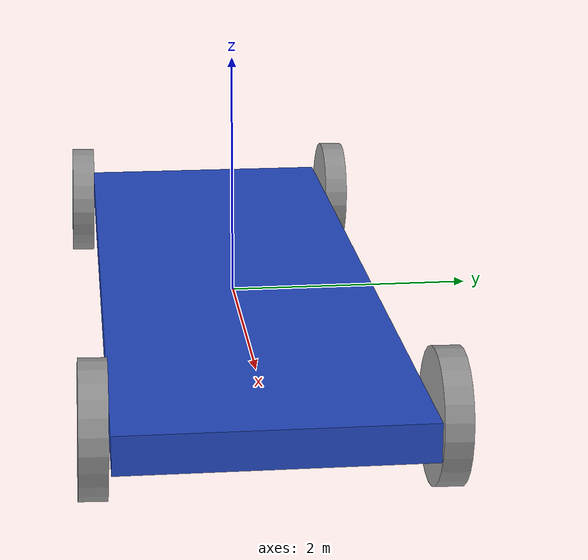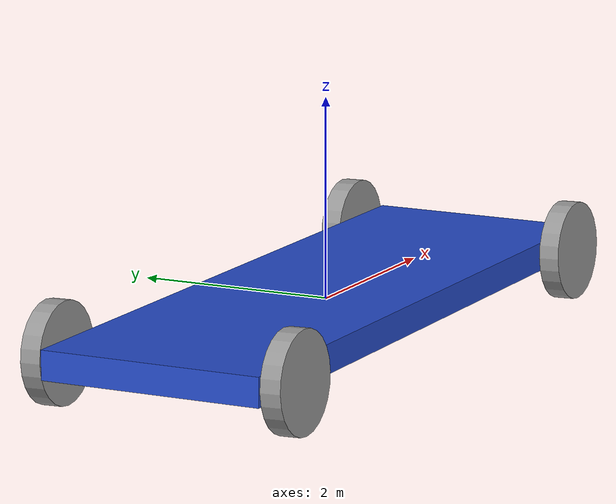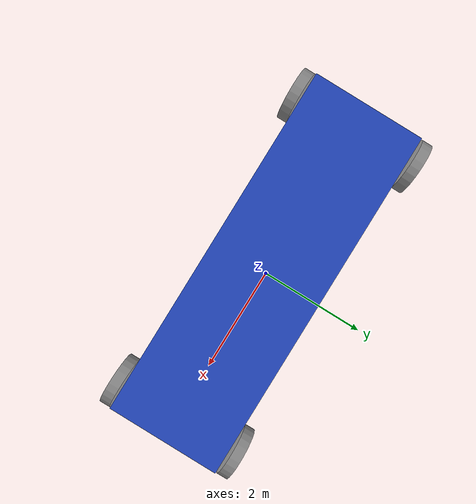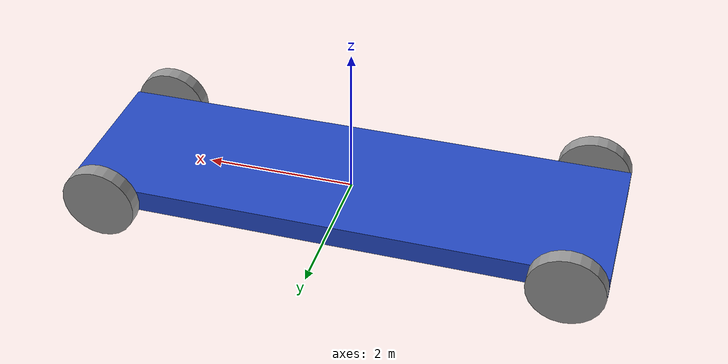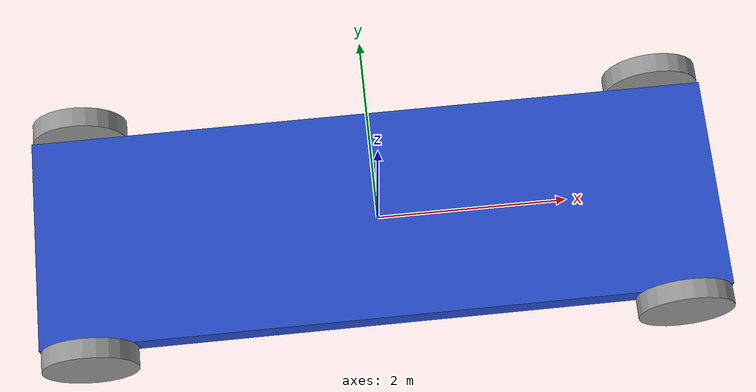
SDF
<?xml version='1.0'?>
<sdf version='1.6'>
  <model name='big_cart'>
    <link name='link_0'>
      <pose frame=''>0 0 0 0 -0 0</pose>
      <inertial>
        <mass>4.6866</mass>
        <inertia>
          <ixx>2.0216</ixx>
          <ixy>0</ixy>
          <ixz>0</ixz>
          <iyy>20.0752</iyy>
          <iyz>0</iyz>
          <izz>22.0311</izz>
        </inertia>
        <pose frame=''>0 0 0 0 -0 0</pose>
      </inertial>
      <gravity>1</gravity>
      <self_collide>0</self_collide>
      <kinematic>0</kinematic>
      <visual name='visual'>
        <pose frame=''>0 0 0 0 -0 0</pose>
        <geometry>
          <box>
            <size>7.16364 2.25661 0.28988</size>
          </box>
        </geometry>
        <material>
          <lighting>1</lighting>
          <script>
            <uri>file://media/materials/scripts/gazebo.material</uri>
            <name>Gazebo/Blue</name>
          </script>
          <ambient>0.9 0.002 0 1</ambient>
          <diffuse>0.9 0.002 0.01 0.9</diffuse>
          <specular>0.01 0.01 0.01 1</specular>
          <emissive>0 0 0 1</emissive>
          <shader type='vertex'>
            <normal_map>__default__</normal_map>
          </shader>
        </material>
        <cast_shadows>1</cast_shadows>
        <transparency>0</transparency>
      </visual>
      <visual name='ModelPreview_0::link_0::visual_1'>
        <pose frame=''>0 0 0 0 -0 0</pose>
        <geometry>
          <box>
            <size>7.16364 2.25661 0.28988</size>
          </box>
        </geometry>
        <material>
          <lighting>1</lighting>
          <script>
            <uri>file://media/materials/scripts/gazebo.material</uri>
            <name>Gazebo/Blue</name>
          </script>
          <ambient>0.09 0.09 0.6 0.7</ambient>
          <diffuse>0.9 0.9 0.9 0.9</diffuse>
          <specular>0.01 0.01 0.01 1</specular>
          <emissive>0 0 0 1</emissive>
          <shader type='vertex'>
            <normal_map>__default__</normal_map>
          </shader>
        </material>
        <cast_shadows>1</cast_shadows>
        <transparency>0</transparency>
      </visual>
      <collision name='collision'>
        <laser_retro>0</laser_retro>
        <max_contacts>10</max_contacts>
        <pose frame=''>0 0 0 0 -0 0</pose>
        <geometry>
          <box>
            <size>7.16364 2.25661 0.28988</size>
          </box>
        </geometry>
        <surface>
          <friction>
            <ode>
              <mu>1</mu>
              <mu2>1</mu2>
              <fdir1>0 0 0</fdir1>
              <slip1>0</slip1>
              <slip2>0</slip2>
            </ode>
            <torsional>
              <coefficient>1</coefficient>
              <patch_radius>0</patch_radius>
              <surface_radius>0</surface_radius>
              <use_patch_radius>1</use_patch_radius>
              <ode>
                <slip>0</slip>
              </ode>
            </torsional>
          </friction>
          <bounce>
            <restitution_coefficient>0</restitution_coefficient>
            <threshold>1e+06</threshold>
          </bounce>
          <contact>
            <collide_without_contact>0</collide_without_contact>
            <collide_without_contact_bitmask>1</collide_without_contact_bitmask>
            <collide_bitmask>1</collide_bitmask>
            <ode>
              <soft_cfm>0</soft_cfm>
              <soft_erp>0.2</soft_erp>
              <kp>1e+13</kp>
              <kd>1</kd>
              <max_vel>0.01</max_vel>
              <min_depth>0</min_depth>
            </ode>
            <bullet>
              <split_impulse>1</split_impulse>
              <split_impulse_penetration_threshold>-0.01</split_impulse_penetration_threshold>
              <soft_cfm>0</soft_cfm>
              <soft_erp>0.2</soft_erp>
              <kp>1e+13</kp>
              <kd>1</kd>
            </bullet>
          </contact>
        </surface>
      </collision>
    </link>
    <link name='link_1_clone_clone_clone'>
      <pose frame=''>-3.08182 1.24423 0 -1.59621 0 0</pose>
      <inertial>
        <mass>0.206504</mass>
        <inertia>
          <ixx>0.0136404</ixx>
          <ixy>0</ixy>
          <ixz>0</ixz>
          <iyy>0.0136404</iyy>
          <iyz>0</iyz>
          <izz>0.0258131</izz>
        </inertia>
        <pose frame=''>0 0 0 0 -0 0</pose>
      </inertial>
      <self_collide>0</self_collide>
      <kinematic>0</kinematic>
      <visual name='visual'>
        <pose frame=''>0 0 0 0 -0 0</pose>
        <geometry>
          <cylinder>
            <radius>0.5</radius>
            <length>0.206502</length>
          </cylinder>
        </geometry>
        <material>
          <lighting>1</lighting>
          <script>
            <uri>file://media/materials/scripts/gazebo.material</uri>
            <name>Gazebo/Grey</name>
          </script>
          <ambient>0.5 0.5 0.5 1</ambient>
          <diffuse>0.9 0.9 0.9 1</diffuse>
          <specular>0.01 0.01 0.01 1</specular>
          <emissive>0 0 0 1</emissive>
          <shader type='vertex'>
            <normal_map>__default__</normal_map>
          </shader>
        </material>
        <cast_shadows>1</cast_shadows>
        <transparency>0</transparency>
      </visual>
      <collision name='collision'>
        <laser_retro>0</laser_retro>
        <max_contacts>10</max_contacts>
        <pose frame=''>0 0 0 0 -0 0</pose>
        <geometry>
          <cylinder>
            <radius>0.5</radius>
            <length>0.206502</length>
          </cylinder>
        </geometry>
        <surface>
          <friction>
            <ode>
              <mu>1</mu>
              <mu2>1</mu2>
              <fdir1>0 0 0</fdir1>
              <slip1>0</slip1>
              <slip2>0</slip2>
            </ode>
            <torsional>
              <coefficient>1</coefficient>
              <patch_radius>0</patch_radius>
              <surface_radius>0</surface_radius>
              <use_patch_radius>1</use_patch_radius>
              <ode>
                <slip>0</slip>
              </ode>
            </torsional>
          </friction>
          <bounce>
            <restitution_coefficient>0</restitution_coefficient>
            <threshold>1e+06</threshold>
          </bounce>
          <contact>
            <collide_without_contact>0</collide_without_contact>
            <collide_without_contact_bitmask>1</collide_without_contact_bitmask>
            <collide_bitmask>1</collide_bitmask>
            <ode>
              <soft_cfm>0</soft_cfm>
              <soft_erp>0.2</soft_erp>
              <kp>1e+13</kp>
              <kd>1</kd>
              <max_vel>0.01</max_vel>
              <min_depth>0</min_depth>
            </ode>
            <bullet>
              <split_impulse>1</split_impulse>
              <split_impulse_penetration_threshold>-0.01</split_impulse_penetration_threshold>
              <soft_cfm>0</soft_cfm>
              <soft_erp>0.2</soft_erp>
              <kp>1e+13</kp>
              <kd>1</kd>
            </bullet>
          </contact>
        </surface>
      </collision>
    </link>
    <link name='link_1_clone_clone_clone_1'>
      <pose frame=''>3.08182 -1.24423 0 -1.59621 0 0</pose>
      <inertial>
        <mass>0.206504</mass>
        <inertia>
          <ixx>0.0136404</ixx>
          <ixy>0</ixy>
          <ixz>0</ixz>
          <iyy>0.0136404</iyy>
          <iyz>0</iyz>
          <izz>0.0258131</izz>
        </inertia>
        <pose frame=''>0 0 0 0 -0 0</pose>
      </inertial>
      <self_collide>0</self_collide>
      <kinematic>0</kinematic>
      <visual name='visual'>
        <pose frame=''>0 0 0 0 -0 0</pose>
        <geometry>
          <cylinder>
            <radius>0.5</radius>
            <length>0.206502</length>
          </cylinder>
        </geometry>
        <material>
          <lighting>1</lighting>
          <script>
            <uri>file://media/materials/scripts/gazebo.material</uri>
            <name>Gazebo/Grey</name>
          </script>
          <ambient>0.5 0.5 0.5 1</ambient>
          <diffuse>0.9 0.9 0.9 1</diffuse>
          <specular>0.01 0.01 0.01 1</specular>
          <emissive>0 0 0 1</emissive>
          <shader type='vertex'>
            <normal_map>__default__</normal_map>
          </shader>
        </material>
        <cast_shadows>1</cast_shadows>
        <transparency>0</transparency>
      </visual>
      <collision name='collision'>
        <laser_retro>0</laser_retro>
        <max_contacts>10</max_contacts>
        <pose frame=''>0 0 0 0 -0 0</pose>
        <geometry>
          <cylinder>
            <radius>0.5</radius>
            <length>0.206502</length>
          </cylinder>
        </geometry>
        <surface>
          <friction>
            <ode>
              <mu>1</mu>
              <mu2>1</mu2>
              <fdir1>0 0 0</fdir1>
              <slip1>0</slip1>
              <slip2>0</slip2>
            </ode>
            <torsional>
              <coefficient>1</coefficient>
              <patch_radius>0</patch_radius>
              <surface_radius>0</surface_radius>
              <use_patch_radius>1</use_patch_radius>
              <ode>
                <slip>0</slip>
              </ode>
            </torsional>
          </friction>
          <bounce>
            <restitution_coefficient>0</restitution_coefficient>
            <threshold>1e+06</threshold>
          </bounce>
          <contact>
            <collide_without_contact>0</collide_without_contact>
            <collide_without_contact_bitmask>1</collide_without_contact_bitmask>
            <collide_bitmask>1</collide_bitmask>
            <ode>
              <soft_cfm>0</soft_cfm>
              <soft_erp>0.2</soft_erp>
              <kp>1e+13</kp>
              <kd>1</kd>
              <max_vel>0.01</max_vel>
              <min_depth>0</min_depth>
            </ode>
            <bullet>
              <split_impulse>1</split_impulse>
              <split_impulse_penetration_threshold>-0.01</split_impulse_penetration_threshold>
              <soft_cfm>0</soft_cfm>
              <soft_erp>0.2</soft_erp>
              <kp>1e+13</kp>
              <kd>1</kd>
            </bullet>
          </contact>
        </surface>
      </collision>
    </link>
    <link name='link_1_clone_clone_clone_1_clone'>
      <pose frame=''>3.08182 1.24423 0 -1.59621 0 0</pose>
      <inertial>
        <mass>0.206504</mass>
        <inertia>
          <ixx>0.0136404</ixx>
          <ixy>0</ixy>
          <ixz>0</ixz>
          <iyy>0.0136404</iyy>
          <iyz>0</iyz>
          <izz>0.0258131</izz>
        </inertia>
        <pose frame=''>0 0 0 0 -0 0</pose>
      </inertial>
      <self_collide>0</self_collide>
      <kinematic>0</kinematic>
      <visual name='visual'>
        <pose frame=''>0 0 0 0 -0 0</pose>
        <geometry>
          <cylinder>
            <radius>0.5</radius>
            <length>0.206502</length>
          </cylinder>
        </geometry>
        <material>
          <lighting>1</lighting>
          <script>
            <uri>file://media/materials/scripts/gazebo.material</uri>
            <name>Gazebo/Grey</name>
          </script>
          <ambient>0.5 0.5 0.5 1</ambient>
          <diffuse>0.9 0.9 0.9 1</diffuse>
          <specular>0.01 0.01 0.01 1</specular>
          <emissive>0 0 0 1</emissive>
          <shader type='vertex'>
            <normal_map>__default__</normal_map>
          </shader>
        </material>
        <cast_shadows>1</cast_shadows>
        <transparency>0</transparency>
      </visual>
      <collision name='collision'>
        <laser_retro>0</laser_retro>
        <max_contacts>10</max_contacts>
        <pose frame=''>0 0 0 0 -0 0</pose>
        <geometry>
          <cylinder>
            <radius>0.5</radius>
            <length>0.206502</length>
          </cylinder>
        </geometry>
        <surface>
          <friction>
            <ode>
              <mu>1</mu>
              <mu2>1</mu2>
              <fdir1>0 0 0</fdir1>
              <slip1>0</slip1>
              <slip2>0</slip2>
            </ode>
            <torsional>
              <coefficient>1</coefficient>
              <patch_radius>0</patch_radius>
              <surface_radius>0</surface_radius>
              <use_patch_radius>1</use_patch_radius>
              <ode>
                <slip>0</slip>
              </ode>
            </torsional>
          </friction>
          <bounce>
            <restitution_coefficient>0</restitution_coefficient>
            <threshold>1e+06</threshold>
          </bounce>
          <contact>
            <collide_without_contact>0</collide_without_contact>
            <collide_without_contact_bitmask>1</collide_without_contact_bitmask>
            <collide_bitmask>1</collide_bitmask>
            <ode>
              <soft_cfm>0</soft_cfm>
              <soft_erp>0.2</soft_erp>
              <kp>1e+13</kp>
              <kd>1</kd>
              <max_vel>0.01</max_vel>
              <min_depth>0</min_depth>
            </ode>
            <bullet>
              <split_impulse>1</split_impulse>
              <split_impulse_penetration_threshold>-0.01</split_impulse_penetration_threshold>
              <soft_cfm>0</soft_cfm>
              <soft_erp>0.2</soft_erp>
              <kp>1e+13</kp>
              <kd>1</kd>
            </bullet>
          </contact>
        </surface>
      </collision>
    </link>
    <link name='link_1_clone_clone_clone_clone'>
      <pose frame=''>-3.08182 -1.24423 0 -1.59621 0 0</pose>
      <inertial>
        <mass>0.206504</mass>
        <inertia>
          <ixx>0.0136404</ixx>
          <ixy>0</ixy>
          <ixz>0</ixz>
          <iyy>0.0136404</iyy>
          <iyz>0</iyz>
          <izz>0.0258131</izz>
        </inertia>
        <pose frame=''>0 0 0 0 -0 0</pose>
      </inertial>
      <self_collide>0</self_collide>
      <kinematic>0</kinematic>
      <visual name='visual'>
        <pose frame=''>0 0 0 0 -0 0</pose>
        <geometry>
          <cylinder>
            <radius>0.5</radius>
            <length>0.206502</length>
          </cylinder>
        </geometry>
        <material>
          <lighting>1</lighting>
          <script>
            <uri>file://media/materials/scripts/gazebo.material</uri>
            <name>Gazebo/Grey</name>
          </script>
          <ambient>0.5 0.5 0.5 1</ambient>
          <diffuse>0.9 0.9 0.9 1</diffuse>
          <specular>0.01 0.01 0.01 1</specular>
          <emissive>0 0 0 1</emissive>
          <shader type='vertex'>
            <normal_map>__default__</normal_map>
          </shader>
        </material>
        <cast_shadows>1</cast_shadows>
        <transparency>0</transparency>
      </visual>
      <collision name='collision'>
        <laser_retro>0</laser_retro>
        <max_contacts>10</max_contacts>
        <pose frame=''>0 0 0 0 -0 0</pose>
        <geometry>
          <cylinder>
            <radius>0.5</radius>
            <length>0.206502</length>
          </cylinder>
        </geometry>
        <surface>
          <friction>
            <ode>
              <mu>1</mu>
              <mu2>1</mu2>
              <fdir1>0 0 0</fdir1>
              <slip1>0</slip1>
              <slip2>0</slip2>
            </ode>
            <torsional>
              <coefficient>1</coefficient>
              <patch_radius>0</patch_radius>
              <surface_radius>0</surface_radius>
              <use_patch_radius>1</use_patch_radius>
              <ode>
                <slip>0</slip>
              </ode>
            </torsional>
          </friction>
          <bounce>
            <restitution_coefficient>0</restitution_coefficient>
            <threshold>1e+06</threshold>
          </bounce>
          <contact>
            <collide_without_contact>0</collide_without_contact>
            <collide_without_contact_bitmask>1</collide_without_contact_bitmask>
            <collide_bitmask>1</collide_bitmask>
            <ode>
              <soft_cfm>0</soft_cfm>
              <soft_erp>0.2</soft_erp>
              <kp>1e+13</kp>
              <kd>1</kd>
              <max_vel>0.01</max_vel>
              <min_depth>0</min_depth>
            </ode>
            <bullet>
              <split_impulse>1</split_impulse>
              <split_impulse_penetration_threshold>-0.01</split_impulse_penetration_threshold>
              <soft_cfm>0</soft_cfm>
              <soft_erp>0.2</soft_erp>
              <kp>1e+13</kp>
              <kd>1</kd>
            </bullet>
          </contact>
        </surface>
      </collision>
    </link>
    <joint name='link_0_JOINT_4' type='revolute'>
      <parent>link_0</parent>
      <child>link_1_clone_clone_clone</child>
      <pose frame=''>0 0 0 0 -0 0</pose>
      <axis>
        <xyz>0 0 1</xyz>
        <use_parent_model_frame>0</use_parent_model_frame>
        <limit>
          <lower>-1.79769e+308</lower>
          <upper>1.79769e+308</upper>
          <effort>-1</effort>
          <velocity>-1</velocity>
        </limit>
        <dynamics>
          <spring_reference>0</spring_reference>
          <spring_stiffness>0</spring_stiffness>
          <damping>0</damping>
        </dynamics>
      </axis>
      <physics>
        <ode>
          <limit>
            <cfm>0</cfm>
            <erp>0.2</erp>
          </limit>
          <suspension>
            <cfm>0</cfm>
            <erp>0.2</erp>
          </suspension>
        </ode>
      </physics>
    </joint>
    <joint name='link_0_JOINT_6' type='revolute'>
      <parent>link_0</parent>
      <child>link_1_clone_clone_clone_1</child>
      <pose frame=''>0 0 0 0 -0 0</pose>
      <axis>
        <xyz>0 0 1</xyz>
        <use_parent_model_frame>0</use_parent_model_frame>
        <limit>
          <lower>-1.79769e+308</lower>
          <upper>1.79769e+308</upper>
          <effort>-1</effort>
          <velocity>-1</velocity>
        </limit>
        <dynamics>
          <spring_reference>0</spring_reference>
          <spring_stiffness>0</spring_stiffness>
          <damping>0</damping>
        </dynamics>
      </axis>
      <physics>
        <ode>
          <limit>
            <cfm>0</cfm>
            <erp>0.2</erp>
          </limit>
          <suspension>
            <cfm>0</cfm>
            <erp>0.2</erp>
          </suspension>
        </ode>
      </physics>
    </joint>
    <joint name='link_0_JOINT_7' type='revolute'>
      <parent>link_0</parent>
      <child>link_1_clone_clone_clone_1_clone</child>
      <pose frame=''>0 0 0 0 -0 0</pose>
      <axis>
        <xyz>0 0 1</xyz>
        <use_parent_model_frame>0</use_parent_model_frame>
        <limit>
          <lower>-1.79769e+308</lower>
          <upper>1.79769e+308</upper>
          <effort>-1</effort>
          <velocity>-1</velocity>
        </limit>
        <dynamics>
          <spring_reference>0</spring_reference>
          <spring_stiffness>0</spring_stiffness>
          <damping>0</damping>
        </dynamics>
      </axis>
      <physics>
        <ode>
          <limit>
            <cfm>0</cfm>
            <erp>0.2</erp>
          </limit>
          <suspension>
            <cfm>0</cfm>
            <erp>0.2</erp>
          </suspension>
        </ode>
      </physics>
    </joint>
    <joint name='link_0_JOINT_8' type='revolute'>
      <parent>link_0</parent>
      <child>link_1_clone_clone_clone_clone</child>
      <pose frame=''>0 0 0 0 -0 0</pose>
      <axis>
        <xyz>0 0 1</xyz>
        <use_parent_model_frame>0</use_parent_model_frame>
        <limit>
          <lower>-1.79769e+308</lower>
          <upper>1.79769e+308</upper>
          <effort>-1</effort>
          <velocity>-1</velocity>
        </limit>
        <dynamics>
          <spring_reference>0</spring_reference>
          <spring_stiffness>0</spring_stiffness>
          <damping>0</damping>
        </dynamics>
      </axis>
      <physics>
        <ode>
          <limit>
            <cfm>0</cfm>
            <erp>0.2</erp>
          </limit>
          <suspension>
            <cfm>0</cfm>
            <erp>0.2</erp>
          </suspension>
        </ode>
      </physics>
    </joint>
    <static>0</static>
    <allow_auto_disable>1</allow_auto_disable>
  </model>
</sdf>
